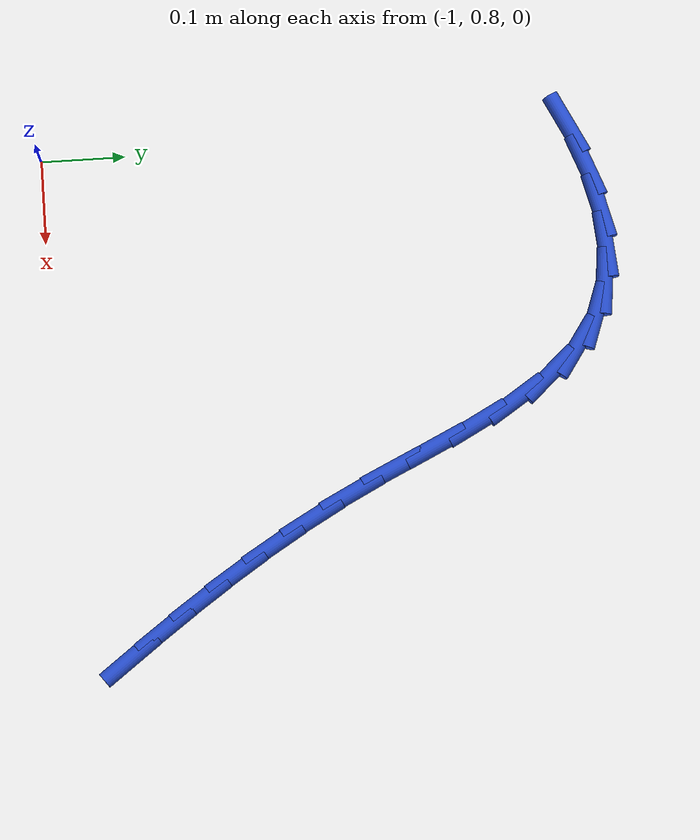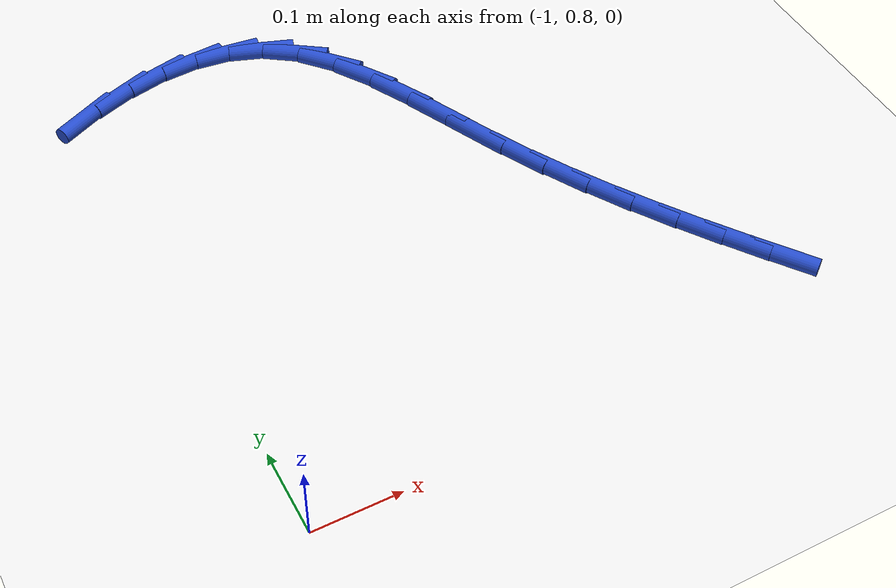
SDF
<sdf version="1.6">
 <world name="default">
  <model name="ground_plane">
   <static>1</static>
   <link name="link">
    <collision name="collision">
     <geometry><plane><normal>0 0 1</normal><size>100 100</size></plane></geometry>
     <surface><friction><ode><mu>100</mu><mu2>50</mu2></ode></friction></surface>
    </collision>
    <visual name="visual">
     <cast_shadows>0</cast_shadows>
     <geometry><plane><normal>0 0 1</normal><size>100 100</size></plane></geometry>
     <material>
      <script><uri>file://media/materials/scripts/gazebo.material</uri><name>Gazebo/WhiteGlow</name></script>
     </material>
    </visual>
   </link>
  </model>
  <model name="line">
   <link name="link_19">
    <pose>-0.39961262913662554 0.8723177022286628 0.01 0 1.57 -0.9309532657640962</pose>
    <collision name="collision">
     <geometry><cylinder><radius>0.01</radius><length>0.08</length></cylinder></geometry>
    </collision>
    <visual name="visual">
     <material>
      <script><name>Gazebo/Blue</name><uri>file://media/materials/scripts/gazebo.material</uri></script>
     </material>
     <geometry><cylinder><radius>0.01</radius><length>0.08</length></cylinder></geometry>
    </visual>
   </link>
   <link name="link_20">
    <pose>-0.43109644628793 0.9146176092783636 0.01 0 1.57 -0.9478274252846886</pose>
    <collision name="collision">
     <geometry><cylinder><radius>0.01</radius><length>0.08</length></cylinder></geometry>
    </collision>
    <visual name="visual">
     <material>
      <script><name>Gazebo/Blue</name><uri>file://media/materials/scripts/gazebo.material</uri></script>
     </material>
     <geometry><cylinder><radius>0.01</radius><length>0.08</length></cylinder></geometry>
    </visual>
   </link>
   <link name="link_21">
    <pose>-0.46212708404508474 0.9578116686926388 0.01 0 1.57 -0.9699695649003346</pose>
    <collision name="collision">
     <geometry><cylinder><radius>0.01</radius><length>0.08</length></cylinder></geometry>
    </collision>
    <visual name="visual">
     <material>
      <script><name>Gazebo/Blue</name><uri>file://media/materials/scripts/gazebo.material</uri></script>
     </material>
     <geometry><cylinder><radius>0.01</radius><length>0.08</length></cylinder></geometry>
    </visual>
   </link>
   <link name="link_22">
    <pose>-0.49248201811640385 1.0021027318569173 0.01 0 1.57 -0.9971612428680933</pose>
    <collision name="collision">
     <geometry><cylinder><radius>0.01</radius><length>0.08</length></cylinder></geometry>
    </collision>
    <visual name="visual">
     <material>
      <script><name>Gazebo/Blue</name><uri>file://media/materials/scripts/gazebo.material</uri></script>
     </material>
     <geometry><cylinder><radius>0.01</radius><length>0.08</length></cylinder></geometry>
    </visual>
   </link>
   <link name="link_23">
    <pose>-0.5219387242102026 1.0476936501566283 0.01 0 1.57 -1.0291321327775087</pose>
    <collision name="collision">
     <geometry><cylinder><radius>0.01</radius><length>0.08</length></cylinder></geometry>
    </collision>
    <visual name="visual">
     <material>
      <script><name>Gazebo/Blue</name><uri>file://media/materials/scripts/gazebo.material</uri></script>
     </material>
     <geometry><cylinder><radius>0.01</radius><length>0.08</length></cylinder></geometry>
    </visual>
   </link>
   <link name="link_24">
    <pose>-0.5502746780347949 1.0947872749772003 0.01 0 1.57 -1.0655471751802412</pose>
    <collision name="collision">
     <geometry><cylinder><radius>0.01</radius><length>0.08</length></cylinder></geometry>
    </collision>
    <visual name="visual">
     <material>
      <script><name>Gazebo/Blue</name><uri>file://media/materials/scripts/gazebo.material</uri></script>
     </material>
     <geometry><cylinder><radius>0.01</radius><length>0.08</length></cylinder></geometry>
    </visual>
   </link>
   <link name="link_25">
    <pose>-0.5772673552984958 1.1435864577040629 0.01 0 1.57 -1.1057685655062883</pose>
    <collision name="collision">
     <geometry><cylinder><radius>0.01</radius><length>0.08</length></cylinder></geometry>
    </collision>
    <visual name="visual">
     <material>
      <script><name>Gazebo/Blue</name><uri>file://media/materials/scripts/gazebo.material</uri></script>
     </material>
     <geometry><cylinder><radius>0.01</radius><length>0.08</length></cylinder></geometry>
    </visual>
   </link>
   <link name="link_26">
    <pose>-0.6027019691381644 1.1942806502202241 0.01 0 1.57 -1.1346516488494216</pose>
    <collision name="collision">
     <geometry><cylinder><radius>0.01</radius><length>0.08</length></cylinder></geometry>
    </collision>
    <visual name="visual">
     <material>
      <script><name>Gazebo/Blue</name><uri>file://media/materials/scripts/gazebo.material</uri></script>
     </material>
     <geometry><cylinder><radius>0.01</radius><length>0.08</length></cylinder></geometry>
    </visual>
   </link>
   <link name="link_27">
    <pose>-0.6268823803003694 1.2461611222980022 0.01 0 1.57 -1.1291887097593125</pose>
    <collision name="collision">
     <geometry><cylinder><radius>0.01</radius><length>0.08</length></cylinder></geometry>
    </collision>
    <visual name="visual">
     <material>
      <script><name>Gazebo/Blue</name><uri>file://media/materials/scripts/gazebo.material</uri></script>
     </material>
     <geometry><cylinder><radius>0.01</radius><length>0.08</length></cylinder></geometry>
    </visual>
   </link>
   <link name="link_28">
    <pose>-0.6509493002888308 1.297069904640025 0.01 0 1.57 -1.0847999282130536</pose>
    <collision name="collision">
     <geometry><cylinder><radius>0.01</radius><length>0.08</length></cylinder></geometry>
    </collision>
    <visual name="visual">
     <material>
      <script><name>Gazebo/Blue</name><uri>file://media/materials/scripts/gazebo.material</uri></script>
     </material>
     <geometry><cylinder><radius>0.01</radius><length>0.08</length></cylinder></geometry>
    </visual>
   </link>
   <link name="link_29">
    <pose>-0.6761194211626106 1.3447174465547518 0.01 0 1.57 -0.9923011185499729</pose>
    <collision name="collision">
     <geometry><cylinder><radius>0.01</radius><length>0.08</length></cylinder></geometry>
    </collision>
    <visual name="visual">
     <material>
      <script><name>Gazebo/Blue</name><uri>file://media/materials/scripts/gazebo.material</uri></script>
     </material>
     <geometry><cylinder><radius>0.01</radius><length>0.08</length></cylinder></geometry>
    </visual>
   </link>
   <link name="link_30">
    <pose>-0.7036094349807707 1.3868141973506423 0.01 0 1.57 -0.8348318362751951</pose>
    <collision name="collision">
     <geometry><cylinder><radius>0.01</radius><length>0.08</length></cylinder></geometry>
    </collision>
    <visual name="visual">
     <material>
      <script><name>Gazebo/Blue</name><uri>file://media/materials/scripts/gazebo.material</uri></script>
     </material>
     <geometry><cylinder><radius>0.01</radius><length>0.08</length></cylinder></geometry>
    </visual>
   </link>
   <link name="link_31">
    <pose>-0.7346360338023729 1.4210706063361556 0.01 0 1.57 -0.5983383203894156</pose>
    <collision name="collision">
     <geometry><cylinder><radius>0.01</radius><length>0.08</length></cylinder></geometry>
    </collision>
    <visual name="visual">
     <material>
      <script><name>Gazebo/Blue</name><uri>file://media/materials/scripts/gazebo.material</uri></script>
     </material>
     <geometry><cylinder><radius>0.01</radius><length>0.08</length></cylinder></geometry>
    </visual>
   </link>
   <link name="link_32">
    <pose>-0.7702984508221887 1.4453816816787068 0.01 0 1.57 -0.3367074194109412</pose>
    <collision name="collision">
     <geometry><cylinder><radius>0.01</radius><length>0.08</length></cylinder></geometry>
    </collision>
    <visual name="visual">
     <material>
      <script><name>Gazebo/Blue</name><uri>file://media/materials/scripts/gazebo.material</uri></script>
     </material>
     <geometry><cylinder><radius>0.01</radius><length>0.08</length></cylinder></geometry>
    </visual>
   </link>
   <link name="link_33">
    <pose>-0.8105353099904434 1.4594660548129965 0.01 0 1.57 -0.10432110111384105</pose>
    <collision name="collision">
     <geometry><cylinder><radius>0.01</radius><length>0.08</length></cylinder></geometry>
    </collision>
    <visual name="visual">
     <material>
      <script><name>Gazebo/Blue</name><uri>file://media/materials/scripts/gazebo.material</uri></script>
     </material>
     <geometry><cylinder><radius>0.01</radius><length>0.08</length></cylinder></geometry>
    </visual>
   </link>
   <link name="link_34">
    <pose>-0.854623486190706 1.4640821395128059 0.01 0 1.57 0.08624600560046985</pose>
    <collision name="collision">
     <geometry><cylinder><radius>0.01</radius><length>0.08</length></cylinder></geometry>
    </collision>
    <visual name="visual">
     <material>
      <script><name>Gazebo/Blue</name><uri>file://media/materials/scripts/gazebo.material</uri></script>
     </material>
     <geometry><cylinder><radius>0.01</radius><length>0.08</length></cylinder></geometry>
    </visual>
   </link>
   <link name="link_35">
    <pose>-0.9018321497345708 1.4600004554667936 0.01 0 1.57 0.23755212516329294</pose>
    <collision name="collision">
     <geometry><cylinder><radius>0.01</radius><length>0.08</length></cylinder></geometry>
    </collision>
    <visual name="visual">
     <material>
      <script><name>Gazebo/Blue</name><uri>file://media/materials/scripts/gazebo.material</uri></script>
     </material>
     <geometry><cylinder><radius>0.01</radius><length>0.08</length></cylinder></geometry>
    </visual>
   </link>
   <link name="link_36">
    <pose>-0.9514304709336325 1.447991522363616 0.01 0 1.57 0.35781645446618937</pose>
    <collision name="collision">
     <geometry><cylinder><radius>0.01</radius><length>0.08</length></cylinder></geometry>
    </collision>
    <visual name="visual">
     <material>
      <script><name>Gazebo/Blue</name><uri>file://media/materials/scripts/gazebo.material</uri></script>
     </material>
     <geometry><cylinder><radius>0.01</radius><length>0.08</length></cylinder></geometry>
    </visual>
   </link>
   <link name="link_37">
    <pose>-1.0026876200994854 1.428825859891931 0.01 0 1.57 0.4553243321221153</pose>
    <collision name="collision">
     <geometry><cylinder><radius>0.01</radius><length>0.08</length></cylinder></geometry>
    </collision>
    <visual name="visual">
     <material>
      <script><name>Gazebo/Blue</name><uri>file://media/materials/scripts/gazebo.material</uri></script>
     </material>
     <geometry><cylinder><radius>0.01</radius><length>0.08</length></cylinder></geometry>
    </visual>
   </link>
  </model>
 </world>
</sdf>
